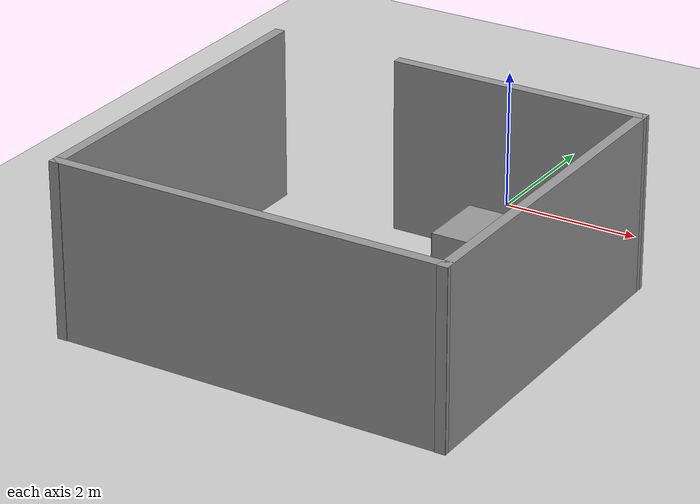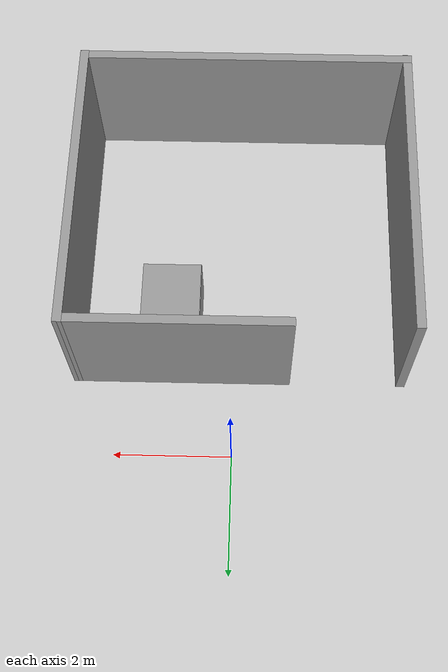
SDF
<sdf version="1.6">
 <world name="default">
  <light name="sun" type="directional">
   <pose>0 0 10 0 -0 0</pose>
   <diffuse>0.8 0.8 0.8 1</diffuse>
   <specular>0.2 0.2 0.2 1</specular>
   <attenuation>
    <range>1000</range>
    <constant>0.9</constant>
    <linear>0.01</linear>
    <quadratic>0.001</quadratic>
   </attenuation>
   <direction>-0.5 0.1 -0.9</direction>
  </light>
  <model name="ground_plane">
   <static>1</static>
   <link name="link">
    <collision name="collision">
     <geometry><plane><normal>0 0 1</normal><size>100 100</size></plane></geometry>
     <surface>
      <contact><collide_bitmask>65535</collide_bitmask></contact>
      <friction><ode><mu>100</mu><mu2>50</mu2></ode></friction>
     </surface>
    </collision>
    <visual name="visual">
     <cast_shadows>0</cast_shadows>
     <geometry><plane><normal>0 0 1</normal><size>100 100</size></plane></geometry>
     <material>
      <script><uri>file://media/materials/scripts/gazebo.material</uri><name>Gazebo/Grey</name></script>
     </material>
    </visual>
   </link>
  </model>
  <gravity>0 0 -9.8</gravity>
  <magnetic_field>6e-06 2.3e-05 -4.2e-05</magnetic_field>
  <atmosphere type="adiabatic"/>
  <physics name="default_physics" default="0" type="ode">
   <max_step_size>0.001</max_step_size>
   <real_time_factor>1</real_time_factor>
   <real_time_update_rate>1000</real_time_update_rate>
  </physics>
  <scene><ambient>0.4 0.4 0.4 1</ambient><background>0.7 0.7 0.7 1</background><shadows>1</shadows></scene>
  <audio><device>default</device></audio>
  <spherical_coordinates>
   <surface_model>EARTH_WGS84</surface_model>
   <latitude_deg>0</latitude_deg>
   <longitude_deg>0</longitude_deg>
   <elevation>0</elevation>
   <heading_deg>0</heading_deg>
  </spherical_coordinates>
  <model name="unit_box">
   <pose>1.09248 -2.63718 0.5 0 -0 0</pose>
   <link name="link">
    <inertial>
     <mass>1</mass>
     <inertia>
      <ixx>0.166667</ixx>
      <ixy>0</ixy>
      <ixz>0</ixz>
      <iyy>0.166667</iyy>
      <iyz>0</iyz>
      <izz>0.166667</izz>
     </inertia>
    </inertial>
    <collision name="collision"><geometry><box><size>1 1 1</size></box></geometry></collision>
    <visual name="visual">
     <geometry><box><size>1 1 1</size></box></geometry>
     <material>
      <script><name>Gazebo/Grey</name><uri>file://media/materials/scripts/gazebo.material</uri></script>
     </material>
    </visual>
   </link>
  </model>
  <model name="Apriltag36_11_00000">
   <link name="main">
    <visual name="main_Visual">
     <geometry><box><size>1 1 0.01</size></box></geometry>
     <material>
      <script>
       <uri>model://Apriltag36_11_00000/materials/scripts</uri>
       <uri>model://Apriltag36_11_00000/materials/textures</uri>
       <name>Apriltag36_11_00000</name>
      </script>
     </material>
    </visual>
   </link>
   <static>1</static>
   <pose>0.58748 -2.63718 0.5 3.14159 -1.57079 3.14159</pose>
  </model>
  <model name="proj_locland">
   <pose>-0.105217 -3.92957 0 0 -0 0</pose>
   <link name="Wall_3">
    <collision name="Wall_3_Collision">
     <geometry><box><size>3.75 0.15 2.5</size></box></geometry>
     <pose>0 0 1.25 0 -0 0</pose>
    </collision>
    <visual name="Wall_3_Visual">
     <pose>0 0 1.25 0 -0 0</pose>
     <geometry><box><size>3.75 0.15 2.5</size></box></geometry>
     <material>
      <script><uri>file://media/materials/scripts/gazebo.material</uri><name>Gazebo/Grey</name></script>
      <ambient>1 1 1 1</ambient>
     </material>
     <meta><layer>0</layer></meta>
    </visual>
    <pose>1.00435 2.51957 0 0 -0 0</pose>
   </link>
   <link name="Wall_4">
    <collision name="Wall_4_Collision">
     <geometry><box><size>5.18914 0.15 2.5</size></box></geometry>
     <pose>0 0 1.25 0 -0 0</pose>
    </collision>
    <visual name="Wall_4_Visual">
     <pose>0 0 1.25 0 -0 0</pose>
     <geometry><box><size>5.18914 0.15 2.5</size></box></geometry>
     <material>
      <script><uri>file://media/materials/scripts/gazebo.material</uri><name>Gazebo/Grey</name></script>
      <ambient>1 1 1 1</ambient>
     </material>
     <meta><layer>0</layer></meta>
    </visual>
    <pose>2.8 -0 0 0 -0 -1.57252</pose>
   </link>
   <link name="Wall_5">
    <collision name="Wall_5_Collision">
     <geometry><box><size>5.75 0.15 2.5</size></box></geometry>
     <pose>0 0 1.25 0 -0 0</pose>
    </collision>
    <visual name="Wall_5_Visual">
     <pose>0 0 1.25 0 -0 0</pose>
     <geometry><box><size>5.75 0.15 2.5</size></box></geometry>
     <material>
      <script><uri>file://media/materials/scripts/gazebo.material</uri><name>Gazebo/Grey</name></script>
      <ambient>1 1 1 1</ambient>
     </material>
     <meta><layer>0</layer></meta>
    </visual>
    <pose>-0.004348 -2.51087 0 0 -0 3.14159</pose>
   </link>
   <link name="Wall_6">
    <collision name="Wall_6_Collision">
     <geometry><box><size>5.18914 0.15 2.5</size></box></geometry>
     <pose>0 0 1.25 0 -0 0</pose>
    </collision>
    <visual name="Wall_6_Visual">
     <pose>0 0 1.25 0 -0 0</pose>
     <geometry><box><size>5.18914 0.15 2.5</size></box></geometry>
     <material>
      <script><uri>file://media/materials/scripts/gazebo.material</uri><name>Gazebo/Grey</name></script>
      <ambient>1 1 1 1</ambient>
     </material>
     <meta><layer>0</layer></meta>
    </visual>
    <pose>-2.8 -0 0 0 -0 1.56907</pose>
   </link>
   <static>1</static>
  </model>
  <light name="user_directional_light_0" type="directional">
   <pose>7.63569 -14.4857 1 0 -0 0</pose>
   <diffuse>0.5 0.5 0.5 1</diffuse>
   <specular>0.1 0.1 0.1 1</specular>
   <direction>0.1 0.1 -0.9</direction>
   <attenuation>
    <range>20</range>
    <constant>0.5</constant>
    <linear>0.01</linear>
    <quadratic>0.001</quadratic>
   </attenuation>
  </light>
 </world>
</sdf>
